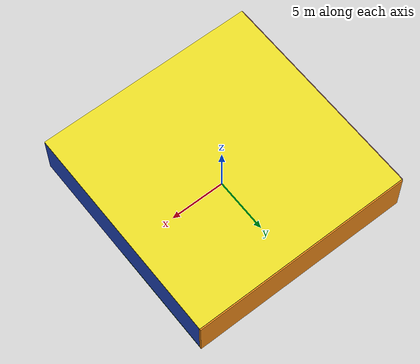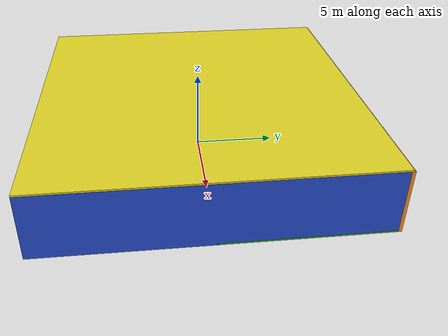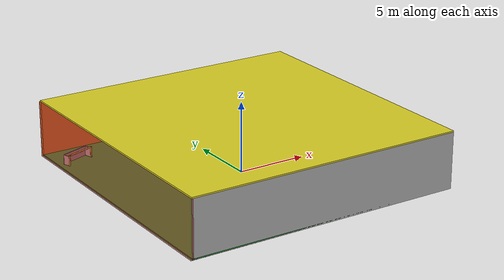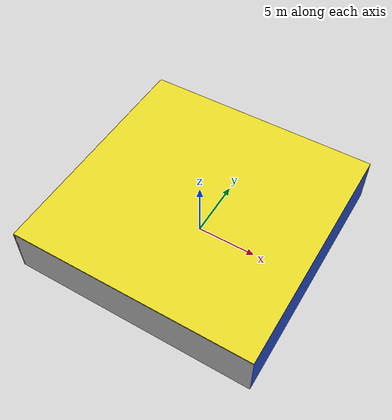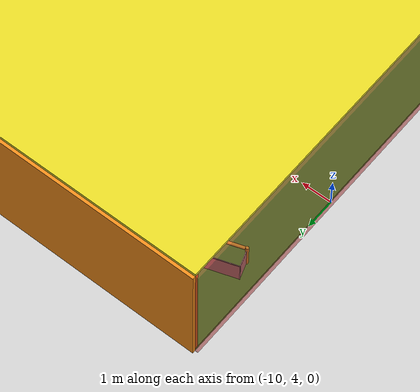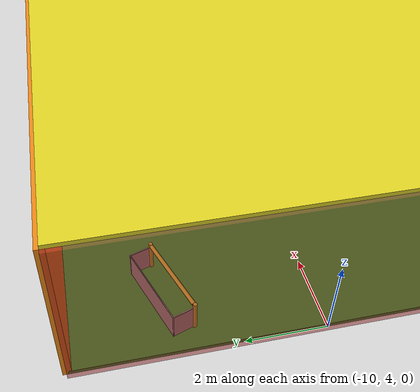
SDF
<sdf version="1.4">
 <world name="default">
  <physics type="ode">
   <max_step_size>0.001</max_step_size>
   <real_time_factor>1</real_time_factor>
   <real_time_update_rate>1000</real_time_update_rate>
   <gravity>0 0 -9.8</gravity>
  </physics>
  <scene><ambient>0.4 0.4 0.4 1</ambient><background>0.7 0.7 0.7 1</background><shadows>1</shadows></scene>
  <model name="Surrounding">
   <static>1</static>
   <link name="Ceiling">
    <collision name="Ceiling_Collision"><geometry><box><size>20 20 0.1</size></box></geometry></collision>
    <visual name="Ceiling_Visual">
     <geometry><box><size>20 20 0.1</size></box></geometry>
     <material>
      <script><uri>file://media/materials/scripts/gazebo.material</uri><name>Gazebo/YellowGlow</name></script>
     </material>
    </visual>
    <pose>0 0 4.05 0 0 0</pose>
   </link>
   <link name="Wall_South">
    <collision name="Wall_South_Collision">
     <geometry><box><size>20 0 4</size></box></geometry>
     <pose>0 0 2 0 -0 0</pose>
    </collision>
    <visual name="Wall_South_Visual">
     <pose>0 0 2 0 -0 0</pose>
     <geometry><box><size>20 0 4</size></box></geometry>
     <material>
      <script><uri>file://media/materials/scripts/gazebo.material</uri><name>Gazebo/LightOff</name></script>
     </material>
    </visual>
    <velocity_decay><linear>0</linear><angular>0</angular></velocity_decay>
    <pose>0 -10 0 0 -0 0</pose>
   </link>
   <link name="Wall_East">
    <collision name="Wall_21_Collision">
     <geometry><box><size>20 0 4</size></box></geometry>
     <pose>0 0 2 0 -0 0</pose>
    </collision>
    <visual name="Wall_21_Visual">
     <pose>0 0 2 0 -0 0</pose>
     <geometry><box><size>20 0 4</size></box></geometry>
     <material>
      <script><uri>file://media/materials/scripts/gazebo.material</uri><name>Gazebo/BlueLaser</name></script>
     </material>
    </visual>
    <velocity_decay><linear>0</linear><angular>0</angular></velocity_decay>
    <pose>10 0 0 0 -0 1.5708</pose>
   </link>
   <link name="Wall_North">
    <collision name="Wall_22_Collision">
     <geometry><box><size>20 0.2 4</size></box></geometry>
     <pose>0 0 2 0 -0 0</pose>
    </collision>
    <visual name="Wall_22_Visual">
     <pose>0 0 2 0 -0 0</pose>
     <geometry><box><size>20 0.2 4</size></box></geometry>
     <material>
      <script><uri>file://media/materials/scripts/gazebo.material</uri><name>Gazebo/Orange</name></script>
     </material>
    </visual>
    <velocity_decay><linear>0</linear><angular>0</angular></velocity_decay>
    <pose>0 10 0 0 -0 0</pose>
   </link>
   <link name="Wall_West">
    <collision name="Wall_23_Collision">
     <geometry><box><size>20 0.2 4</size></box></geometry>
     <pose>0 0 2 0 -0 0</pose>
    </collision>
    <visual name="Wall_23_Visual">
     <pose>0 0 2 0 -0 0</pose>
     <geometry><box><size>20 0.2 4</size></box></geometry>
     <material>
      <script><uri>file://media/materials/scripts/gazebo.material</uri><name>Gazebo/RedTransparent</name></script>
     </material>
    </visual>
    <velocity_decay><linear>0</linear><angular>0</angular></velocity_decay>
    <pose>-10 0 0 0 0 -1.5708</pose>
   </link>
   <link name="Ground_link">
    <collision name="collision">
     <pose>0 0 .05 0 -0 0</pose>
     <geometry><box><size>20 20 0.1</size></box></geometry>
    </collision>
    <visual name="visual">
     <pose>0 0 .05 0 -0 0</pose>
     <geometry><box><size>20 20 0.1</size></box></geometry>
     <material>
      <script><uri>file://media/materials/scripts/gazebo.material</uri><name>Gazebo/GreenGlow</name></script>
     </material>
    </visual>
   </link>
   <static>1</static>
  </model>
  <spherical_coordinates>
   <surface_model>EARTH_WGS84</surface_model>
   <latitude_deg>0</latitude_deg>
   <longitude_deg>0</longitude_deg>
   <elevation>0</elevation>
   <heading_deg>0</heading_deg>
  </spherical_coordinates>
  <light name="lightball_0" type="diffuse">
   <diffuse>0.8 0.8 0.8 1</diffuse>
   <specular>0.2 0.2 0.2 1</specular>
   <attenuation>
    <range>100</range>
    <constant>0.7</constant>
    <linear>0.01</linear>
    <quadratic>0.001</quadratic>
   </attenuation>
   <direction>-0.5 0.1 -0.9</direction>
   <pose>-8.21597648366 -7.13196512223 1.38544251983 0 0 0</pose>
  </light>
  <light name="lightball_1" type="diffuse">
   <diffuse>0.8 0.8 0.8 1</diffuse>
   <specular>0.2 0.2 0.2 1</specular>
   <attenuation>
    <range>100</range>
    <constant>0.7</constant>
    <linear>0.01</linear>
    <quadratic>0.001</quadratic>
   </attenuation>
   <direction>-0.5 0.1 -0.9</direction>
   <pose>-3.11804306837 -2.35904915472 0.571471632596 0 0 0</pose>
  </light>
  <light name="lightball_2" type="diffuse">
   <diffuse>0.8 0.8 0.8 1</diffuse>
   <specular>0.2 0.2 0.2 1</specular>
   <attenuation>
    <range>100</range>
    <constant>0.7</constant>
    <linear>0.01</linear>
    <quadratic>0.001</quadratic>
   </attenuation>
   <direction>-0.5 0.1 -0.9</direction>
   <pose>7.8828364783 1.40803996301 1.0052824089 0 0 0</pose>
  </light>
  <light name="lightball_3" type="diffuse">
   <diffuse>0.8 0.8 0.8 1</diffuse>
   <specular>0.2 0.2 0.2 1</specular>
   <attenuation>
    <range>100</range>
    <constant>0.7</constant>
    <linear>0.01</linear>
    <quadratic>0.001</quadratic>
   </attenuation>
   <direction>-0.5 0.1 -0.9</direction>
   <pose>9.02920143351 -3.61362702079 0.804462012931 0 0 0</pose>
  </light>
  <light name="lightball_4" type="diffuse">
   <diffuse>0.8 0.8 0.8 1</diffuse>
   <specular>0.2 0.2 0.2 1</specular>
   <attenuation>
    <range>100</range>
    <constant>0.7</constant>
    <linear>0.01</linear>
    <quadratic>0.001</quadratic>
   </attenuation>
   <direction>-0.5 0.1 -0.9</direction>
   <pose>-8.68143919847 -4.27975974802 3.60453340096 0 0 0</pose>
  </light>
  <light name="lightball_5" type="diffuse">
   <diffuse>0.8 0.8 0.8 1</diffuse>
   <specular>0.2 0.2 0.2 1</specular>
   <attenuation>
    <range>100</range>
    <constant>0.7</constant>
    <linear>0.01</linear>
    <quadratic>0.001</quadratic>
   </attenuation>
   <direction>-0.5 0.1 -0.9</direction>
   <pose>4.35398269035 4.18187395783 1.66522483909 0 0 0</pose>
  </light>
  <light name="lightball_6" type="diffuse">
   <diffuse>0.8 0.8 0.8 1</diffuse>
   <specular>0.2 0.2 0.2 1</specular>
   <attenuation>
    <range>100</range>
    <constant>0.7</constant>
    <linear>0.01</linear>
    <quadratic>0.001</quadratic>
   </attenuation>
   <direction>-0.5 0.1 -0.9</direction>
   <pose>-9.56662934738 3.10499623172 1.87959152533 0 0 0</pose>
  </light>
  <light name="lightball_7" type="diffuse">
   <diffuse>0.8 0.8 0.8 1</diffuse>
   <specular>0.2 0.2 0.2 1</specular>
   <attenuation>
    <range>100</range>
    <constant>0.7</constant>
    <linear>0.01</linear>
    <quadratic>0.001</quadratic>
   </attenuation>
   <direction>-0.5 0.1 -0.9</direction>
   <pose>3.54910109146 9.83346327806 1.46547239703 0 0 0</pose>
  </light>
  <light name="lightball_8" type="diffuse">
   <diffuse>0.8 0.8 0.8 1</diffuse>
   <specular>0.2 0.2 0.2 1</specular>
   <attenuation>
    <range>100</range>
    <constant>0.7</constant>
    <linear>0.01</linear>
    <quadratic>0.001</quadratic>
   </attenuation>
   <direction>-0.5 0.1 -0.9</direction>
   <pose>-4.99060479009 -6.88941528587 0.898791404848 0 0 0</pose>
  </light>
  <light name="lightball_9" type="diffuse">
   <diffuse>0.8 0.8 0.8 1</diffuse>
   <specular>0.2 0.2 0.2 1</specular>
   <attenuation>
    <range>100</range>
    <constant>0.7</constant>
    <linear>0.01</linear>
    <quadratic>0.001</quadratic>
   </attenuation>
   <direction>-0.5 0.1 -0.9</direction>
   <pose>0.446191620054 -6.48359838087 2.97683838388 0 0 0</pose>
  </light>
  <light name="lightball_10" type="diffuse">
   <diffuse>0.8 0.8 0.8 1</diffuse>
   <specular>0.2 0.2 0.2 1</specular>
   <attenuation>
    <range>100</range>
    <constant>0.7</constant>
    <linear>0.01</linear>
    <quadratic>0.001</quadratic>
   </attenuation>
   <direction>-0.5 0.1 -0.9</direction>
   <pose>-5.09476817595 -2.96821943848 3.49674259821 0 0 0</pose>
  </light>
  <light name="lightball_11" type="diffuse">
   <diffuse>0.8 0.8 0.8 1</diffuse>
   <specular>0.2 0.2 0.2 1</specular>
   <attenuation>
    <range>100</range>
    <constant>0.7</constant>
    <linear>0.01</linear>
    <quadratic>0.001</quadratic>
   </attenuation>
   <direction>-0.5 0.1 -0.9</direction>
   <pose>9.52128814399 5.54678560054 3.48253367522 0 0 0</pose>
  </light>
  <light name="lightball_12" type="diffuse">
   <diffuse>0.8 0.8 0.8 1</diffuse>
   <specular>0.2 0.2 0.2 1</specular>
   <attenuation>
    <range>100</range>
    <constant>0.7</constant>
    <linear>0.01</linear>
    <quadratic>0.001</quadratic>
   </attenuation>
   <direction>-0.5 0.1 -0.9</direction>
   <pose>8.66239878879 4.45238790791 3.58401472583 0 0 0</pose>
  </light>
  <include>
   <uri>model://robocup_3Dsim_goal</uri>
   <pose>-8.42140820038 7.37822354936 0 0 0 1.89554613486</pose>
  </include>
  <include><uri>model://cabinet</uri><pose>-4.13085449492 -0.390397958838 0 0 0 1.81757345666</pose></include>
  <include>
   <uri>model://construction_cone</uri>
   <pose>8.32986313177 -7.55380308787 0 0 0 1.02505998449</pose>
  </include>
 </world>
</sdf>

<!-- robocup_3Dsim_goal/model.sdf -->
<sdf version="1.5">
  <model name="robocup_3d_goal">
    <static>true</static>
    <link name="left_post">
      <pose>0 1.05 0.45 0 0 0</pose>
      <collision name="collision">
        <geometry>
          <cylinder>
            <radius>0.05</radius>
            <length>0.9</length>
          </cylinder>
        </geometry>
      </collision>
      <visual name="visual">
        <geometry>
          <cylinder>
            <radius>0.05</radius>
            <length>0.9</length>
          </cylinder>
        </geometry>
        <material>
          <script>
            <uri>file://media/materials/scripts/gazebo.material</uri>
            <name>Gazebo/ZincYellow</name>
          </script>
        </material>
      </visual>
    </link>
    <link name="left_support_horiz_lower">
      <pose>0.30 1.05 0.01 0 0 0</pose>
      <collision name="collision">
        <geometry>
          <box>
            <size>0.50 0.02 0.02</size>
          </box>
        </geometry>
      </collision>
      <visual name="visual">
        <geometry>
          <box>
            <size>0.50 0.02 0.02</size>
          </box>
        </geometry>
        <material>
          <script>
            <uri>file://media/materials/scripts/gazebo.material</uri>
            <name>Gazebo/White</name>
          </script>
        </material>
      </visual>
    </link>
    <link name="left_support_horiz_upper">
      <pose>0.30 1.05 0.79 0 0 0</pose>
      <collision name="collision">
        <geometry>
          <box>
            <size>0.50 0.02 0.02</size>
          </box>
        </geometry>
      </collision>
      <visual name="visual">
        <geometry>
          <box>
            <size>0.50 0.02 0.02</size>
          </box>
        </geometry>
        <material>
          <script>
            <uri>file://media/materials/scripts/gazebo.material</uri>
            <name>Gazebo/White</name>
          </script>
        </material>
      </visual>
    </link>
    <link name="left_support_vertical">
      <pose>0.56 1.05 0.4 0 1.5708 0</pose>
      <collision name="collision">
        <geometry>
          <box>
            <size>0.80 0.02 0.02</size>
          </box>
        </geometry>
      </collision>
      <visual name="visual">
        <geometry>
          <box>
            <size>0.80 0.02 0.02</size>
          </box>
        </geometry>
        <material>
          <script>
            <uri>file://media/materials/scripts/gazebo.material</uri>
            <name>Gazebo/White</name>
          </script>
        </material>
      </visual>
    </link>
    <link name="right_support_horiz_lower">
      <pose>0.30 -1.05 0.01 0 0 0</pose>
      <collision name="collision">
        <geometry>
          <box>
            <size>0.50 0.02 0.02</size>
          </box>
        </geometry>
      </collision>
      <visual name="visual">
        <geometry>
          <box>
            <size>0.50 0.02 0.02</size>
          </box>
        </geometry>
        <material>
          <script>
            <uri>file://media/materials/scripts/gazebo.material</uri>
            <name>Gazebo/White</name>
          </script>
        </material>
      </visual>
    </link>
    <link name="right_support_horiz_upper">
      <pose>0.30 -1.05 0.79 0 0 0</pose>
      <collision name="collision">
        <geometry>
          <box>
            <size>0.50 0.02 0.02</size>
          </box>
        </geometry>
      </collision>
      <visual name="visual">
        <geometry>
          <box>
            <size>0.50 0.02 0.02</size>
          </box>
        </geometry>
        <material>
          <script>
            <uri>file://media/materials/scripts/gazebo.material</uri>
            <name>Gazebo/White</name>
          </script>
        </material>
      </visual>
    </link>
    <link name="right_support_vertical">
      <pose>0.56 -1.05 0.4 0 1.5708 0</pose>
      <collision name="collision">
        <geometry>
          <box>
            <size>0.80 0.02 0.02</size>
          </box>
        </geometry>
      </collision>
      <visual name="visual">
        <geometry>
          <box>
            <size>0.80 0.02 0.02</size>
          </box>
        </geometry>
        <material>
          <script>
            <uri>file://media/materials/scripts/gazebo.material</uri>
            <name>Gazebo/White</name>
          </script>
        </material>
      </visual>
    </link>
    <link name="center_support_horiz_lower">
      <pose>0.56 0 0.01 0 1.5708 0</pose>
      <collision name="collision">
        <geometry>
          <box>
            <size>0.02 2.08 0.02</size>
          </box>
        </geometry>
      </collision>
      <visual name="visual">
        <geometry>
          <box>
            <size>0.02 2.08 0.02</size>
          </box>
        </geometry>
        <material>
          <script>
            <uri>file://media/materials/scripts/gazebo.material</uri>
            <name>Gazebo/White</name>
          </script>
        </material>
      </visual>
    </link>
    <link name="center_support_horiz_upper">
      <pose>0.56 0 0.79 0 1.5708 0</pose>
      <collision name="collision">
        <geometry>
          <box>
            <size>0.02 2.08 0.02</size>
          </box>
        </geometry>
      </collision>
      <visual name="visual">
        <geometry>
          <box>
            <size>0.02 2.08 0.02</size>
          </box>
        </geometry>
        <material>
          <script>
            <uri>file://media/materials/scripts/gazebo.material</uri>
            <name>Gazebo/White</name>
          </script>
        </material>
      </visual>
    </link>
    <link name="right_post">
      <pose>0 -1.05 0.45 0 0 0</pose>
      <collision name="collision">
        <geometry>
          <cylinder>
            <radius>0.05</radius>
            <length>0.9</length>
          </cylinder>
        </geometry>
      </collision>
      <visual name="visual">
        <geometry>
          <cylinder>
            <radius>0.05</radius>
            <length>0.9</length>
          </cylinder>
        </geometry>
        <material>
          <script>
            <uri>file://media/materials/scripts/gazebo.material</uri>
            <name>Gazebo/ZincYellow</name>
          </script>
        </material>
      </visual>
    </link>
    <link name="crossbar">
      <pose>0 0 0.85 1.57 1.57 0</pose>
      <collision name="collision">
        <geometry>
          <cylinder>
            <radius>0.05</radius>
            <length>2.0</length>
          </cylinder>
        </geometry>
      </collision>
      <visual name="visual">
        <geometry>
          <cylinder>
            <radius>0.05</radius>
            <length>2.0</length>
          </cylinder>
        </geometry>
        <material>
          <script>
            <uri>file://media/materials/scripts/gazebo.material</uri>
            <name>Gazebo/ZincYellow</name>
          </script>
        </material>
      </visual>
    </link>
    <link name="center_net">
      <pose>0.56 0 0.40 0 0 0</pose>
      <collision name="collision">
        <geometry>
          <box>
            <size>0.01 2.1 0.80</size>
          </box>
        </geometry>
      </collision>
      <visual name="visual">
        <geometry>
          <box>
            <size>0.01 2.1 0.80</size>
          </box>
        </geometry>
        <material>
          <script>
            <uri>model://../model_source/models/robocup09_spl_field/materials/scripts/</uri>
            <uri>model://../model_source/models/robocup09_spl_field/materials/textures/</uri>
            <name>RoboCup/Net</name>
          </script>
        </material>
      </visual>
    </link>
    <link name="left_net">
      <pose>0.30 1.05 0.40 0 0 0</pose>
      <collision name="collision">
        <geometry>
          <box>
            <size>0.50 0.01 0.76</size>
          </box>
        </geometry>
      </collision>
      <visual name="visual">
        <geometry>
          <box>
            <size>0.50 0.01 0.76</size>
          </box>
        </geometry>
        <material>
          <script>
            <uri>model://../model_source/models/robocup09_spl_field/materials/scripts/</uri>
            <uri>model://../model_source/models/robocup09_spl_field/materials/textures/</uri>
            <name>RoboCup/Net</name>
          </script>
        </material>
      </visual>
    </link>
    <link name="right_net">
      <pose>0.30 -1.05 0.40 0 0 0</pose>
      <collision name="collision">
        <geometry>
          <box>
            <size>0.50 0.01 0.76</size>
          </box>
        </geometry>
      </collision>
      <visual name="visual">
        <geometry>
          <box>
            <size>0.50 0.01 0.76</size>
          </box>
        </geometry>
        <material>
          <script>
            <uri>model://../model_source/models/robocup09_spl_field/materials/scripts/</uri>
            <uri>model://../model_source/models/robocup09_spl_field/materials/textures/</uri>
            <name>RoboCup/Net</name>
          </script>
        </material>
      </visual>
    </link>
  </model>
</sdf>

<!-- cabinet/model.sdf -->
<sdf version="1.5">
  <model name="cabinet">
    <static>true</static>
    <link name="cabinet_bottom_plate">
      <inertial>
        <pose>0 0 -1 0 0 0</pose>
        <inertia>
          <ixx>2.050000</ixx>
          <ixy>0</ixy>
          <ixz>0</ixz>
          <iyy>2.050000</iyy>
          <iyz>0</iyz>
          <izz>2.050000</izz>
        </inertia>
        <mass>25.000000</mass>
      </inertial>
      <collision name="cabinet_bottom_plate_geom">
        <pose>0 0 0.010000 0 0 0</pose>
        <geometry>
          <box>
            <size>0.450000 0.450000 0.020000</size>
          </box>
        </geometry>
      </collision>
      <visual name="cabinet_bottom_plate_geom_visual">
        <pose>0 0 0.010000 0 0 0</pose>
        <geometry>
          <box>
            <size>0.450000 0.450000 0.020000</size>
          </box>
        </geometry>
        <material>
          <script>
            <uri>model://media/materials/scripts/gazebo.material</uri>
            <name>Gazebo/Wood</name>
          </script>
        </material>
      </visual>
      <collision name="cabinet_bottom_plate_geom_cabinet_back_plate">
        <pose>0.235000 0 0.510000 0 0 0</pose>
        <geometry>
          <box>
            <size>0.020000 0.450000 1.020000</size>
          </box>
        </geometry>
      </collision>
      <visual name="cabinet_bottom_plate_geom_cabinet_back_plate_visual">
        <pose>0.235000 0 0.510000 0 0 0</pose>
        <geometry>
          <box>
            <size>0.020000 0.450000 1.020000</size>
          </box>
        </geometry>
        <material>
          <script>
            <uri>model://media/materials/scripts/gazebo.material</uri>
            <name>Gazebo/Wood</name>
          </script>
        </material>
      </visual>
      <collision name="cabinet_bottom_plate_geom_cabinet_left_plate">
        <pose>0 0.235000 0.510000 0 0 0</pose>
        <geometry>
          <box>
            <size>0.450000 0.020000 1.020000</size>
          </box>
        </geometry>
      </collision>
      <visual name="cabinet_bottom_plate_geom_cabinet_left_plate_visual">
        <pose>0 0.235000 0.510000 0 0 0</pose>
        <geometry>
          <box>
            <size>0.450000 0.020000 1.020000</size>
          </box>
        </geometry>
        <material>
          <script>
            <uri>model://media/materials/scripts/gazebo.material</uri>
            <name>Gazebo/Wood</name>
          </script>
        </material>
      </visual>
      <collision name="cabinet_bottom_plate_geom_cabinet_middle_plate">
        <pose>0 0 0.510000 0 0 0</pose>
        <geometry>
          <box>
            <size>0.450000 0.450000 0.020000</size>
          </box>
        </geometry>
      </collision>
      <visual name="cabinet_bottom_plate_geom_cabinet_middle_plate_visual">
        <pose>0 0 0.510000 0 0 0</pose>
        <geometry>
          <box>
            <size>0.450000 0.450000 0.020000</size>
          </box>
        </geometry>
        <material>
          <script>
            <uri>model://media/materials/scripts/gazebo.material</uri>
            <name>Gazebo/Wood</name>
          </script>
        </material>
      </visual>
      <collision name="cabinet_bottom_plate_geom_cabinet_right_plate">
        <pose>0 -0.235000 0.510000 0 0 0</pose>
        <geometry>
          <box>
            <size>0.450000 0.020000 1.020000</size>
          </box>
        </geometry>
      </collision>
      <visual name="cabinet_bottom_plate_geom_cabinet_right_plate_visual">
        <pose>0 -0.235000 0.510000 0 0 0</pose>
        <geometry>
          <box>
            <size>0.450000 0.020000 1.020000</size>
          </box>
        </geometry>
        <material>
          <script>
            <uri>model://media/materials/scripts/gazebo.material</uri>
            <name>Gazebo/Wood</name>
          </script>
        </material>
      </visual>
      <collision name="cabinet_bottom_plate_geom_cabinet_top_plate">
        <pose>0 0 1.010000 0 0 0</pose>
        <geometry>
          <box>
            <size>0.450000 0.450000 0.020000</size>
          </box>
        </geometry>
      </collision>
      <visual name="cabinet_bottom_plate_geom_cabinet_top_plate_visual">
        <pose>0 0 1.010000 0 0 0</pose>
        <geometry>
          <box>
            <size>0.450000 0.450000 0.020000</size>
          </box>
        </geometry>
        <material>
          <script>
            <uri>model://media/materials/scripts/gazebo.material</uri>
            <name>Gazebo/Wood</name>
          </script>
        </material>
      </visual>
    </link>
  </model>
</sdf>

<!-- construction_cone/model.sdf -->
<sdf version="1.5">
  <model name="Construction Cone">
    <link name="link">
      <collision name="collision">
        <geometry>
          <mesh>
            <scale>10 10 10</scale>
            <uri>file://isr-testbed/construction_cone/meshes/construction_cone.dae</uri>
          </mesh>
        </geometry>
      </collision>
      <visual name="visual">
        <geometry>
          <mesh>
            <scale>10 10 10</scale>
            <uri>file://isr-testbed/construction_cone/meshes/construction_cone.dae</uri>
          </mesh>
        </geometry>
      </visual>
    </link>
  </model>
</sdf>
